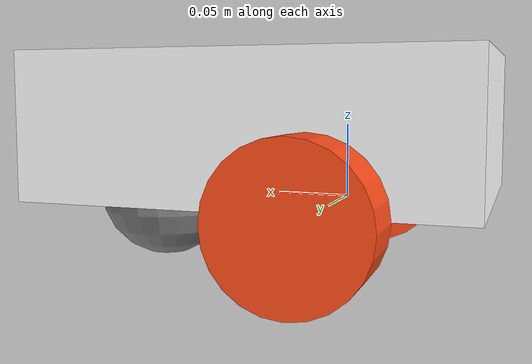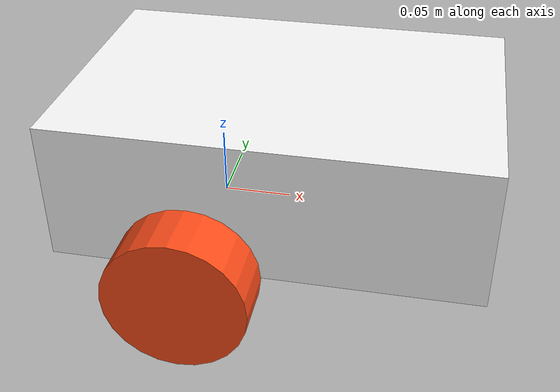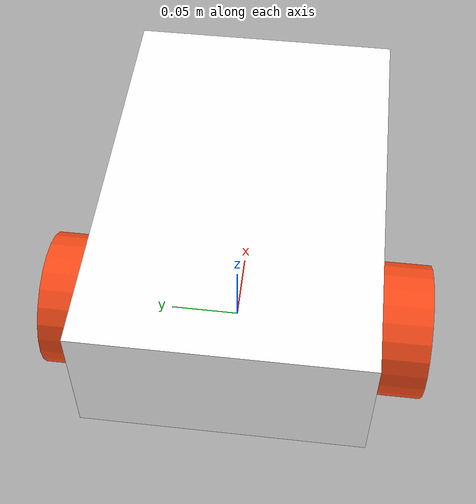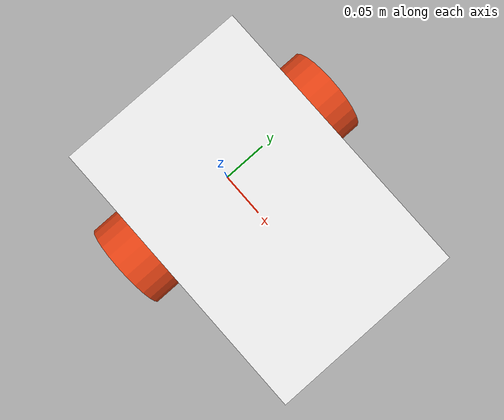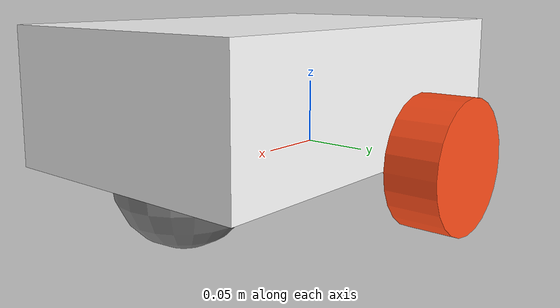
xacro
<?xml version="1.0"?>
<robot xmlns:xacro="http://www.ros.org/wiki/xacro" >

    <xacro:include filename="inertial_macros.xacro"/>

    <material name="white">
        <color rgba="1 1 1 1" />
    </material>

    <material name="orange">
        <color rgba="1 0.3 0.1 1"/>
    </material>

    <material name="blue">
        <color rgba="0.2 0.2 1 1"/>
    </material>

    <material name="black">
        <color rgba="0 0 0 1"/>
    </material>

    <material name="grey">
        <color rgba="0.5 0.5 0.5 1"/>
    </material>

    <!-- BASE LINK -->

    <link name="base_link">

    </link>

    <!-- CHASSIS LINK -->

    <joint name="chassis_joint" type="fixed">
        <parent link="base_link"/>
        <child link="chassis"/>
        <origin xyz="-0.1 0 0"/>
    </joint>

    <link name="chassis">
        <visual>
            <origin xyz="0.15 0 0.05"/>
            <geometry>
                <box size="0.3 0.2 0.1"/>
            </geometry>
            <material name="white"/>
        </visual>
        <collision>
            <origin xyz="0.15 0 0.05"/>
            <geometry>
                <box size="0.3 0.2 0.1"/>
            </geometry>
        </collision>
        <xacro:inertial_box mass="0.5" x="0.3" y="0.2" z="0.1">
            <origin xyz="0.15 0 0.05" rpy="0 0 0"/>
        </xacro:inertial_box>
    </link>

    <gazebo reference="chassis">
    	<material>Gazebo/Black</material>
    </gazebo>

    <!-- LEFT WHEEL LINK -->

    <joint name="left_wheel_joint" type="continuous">
        <parent link="base_link"/>
        <child link="left_wheel"/>
        <origin xyz="0 0.121 0" rpy="-${pi/2} 0 0" />
        <axis xyz="0 0 1"/>
    </joint>

    <link name="left_wheel">
        <visual>
            <geometry>
                <cylinder radius="0.05" length="0.04"/>
            </geometry>
            <material name="orange"/>
        </visual>
        <collision>
            <geometry>
                <cylinder radius="0.05" length="0.04"/>
            </geometry>
        </collision>
        <xacro:inertial_cylinder mass="0.1" length="0.04" radius="0.05">
            <origin xyz="0 0 0" rpy="0 0 0"/>
        </xacro:inertial_cylinder>
    </link>

    <gazebo reference="left_wheel">
    	<material>Gazebo/Orange</material>
    </gazebo>

    <!-- RIGHT WHEEL LINK -->

    <joint name="right_wheel_joint" type="continuous">
        <parent link="base_link"/>
        <child link="right_wheel"/>
        <origin xyz="0 -0.121 0" rpy="${pi/2} 0 0" />
        <axis xyz="0 0 -1"/>
    </joint>

    <link name="right_wheel">
        <visual>
            <geometry>
                <cylinder radius="0.05" length="0.04"/>
            </geometry>
            <material name="orange"/>
        </visual>
        <collision>
            <geometry>
                <cylinder radius="0.05" length="0.04"/>
            </geometry>
        </collision>
        <xacro:inertial_cylinder mass="0.1" length="0.04" radius="0.05">
            <origin xyz="0 0 0" rpy="0 0 0"/>
        </xacro:inertial_cylinder>
    </link>

    <gazebo reference="right_wheel">
    	<material>Gazebo/Orange</material>
    </gazebo>

    <!-- CASTER WHEEL LINK -->

    <joint name="caster_wheel_joint" type="fixed">
        <parent link="chassis"/>
        <child link="caster_wheel"/>
        <origin xyz="0.24 0 0"/>
    </joint>

    <link name="caster_wheel">
        <visual>
            <geometry>
                <sphere radius="0.05"/>
            </geometry>
            <material name="grey"/>
        </visual>
        <collision>
            <geometry>
                <sphere radius="0.05"/>
            </geometry>
        </collision>
        <xacro:inertial_sphere mass="0.1" radius="0.05">
            <origin xyz="0 0 0" rpy="0 0 0"/>
        </xacro:inertial_sphere>
    </link>

    <gazebo reference="caster_wheel">
    	<material>Gazebo/Grey</material>
    	<mu1 value="0.01"/>
    	<mu2 value="0.01"/>
    </gazebo>

</robot>
